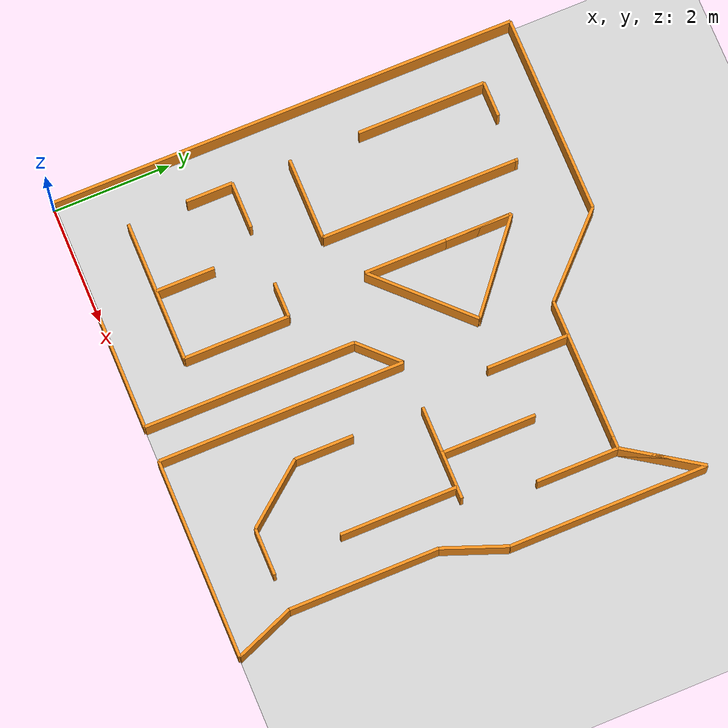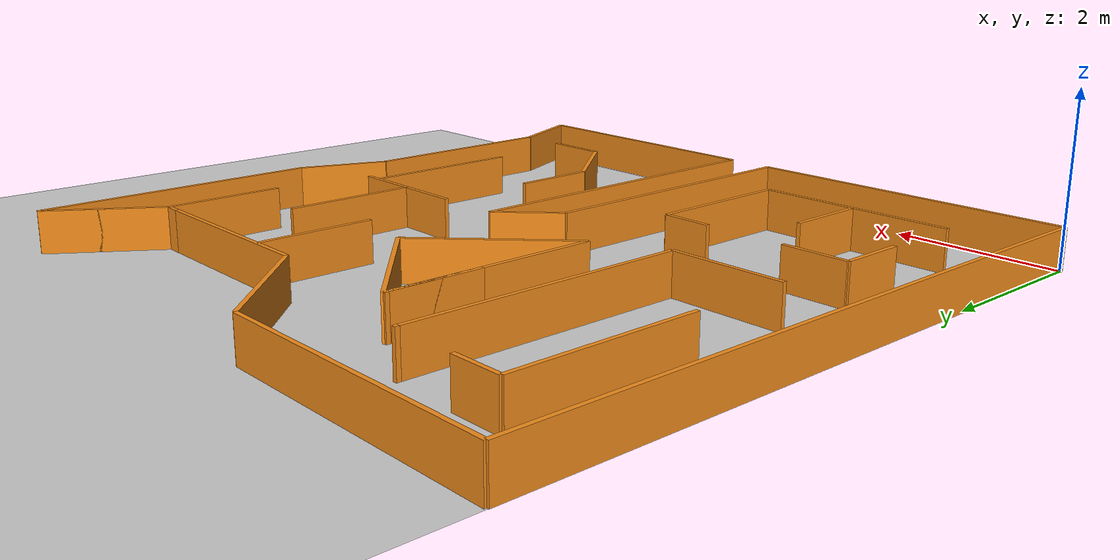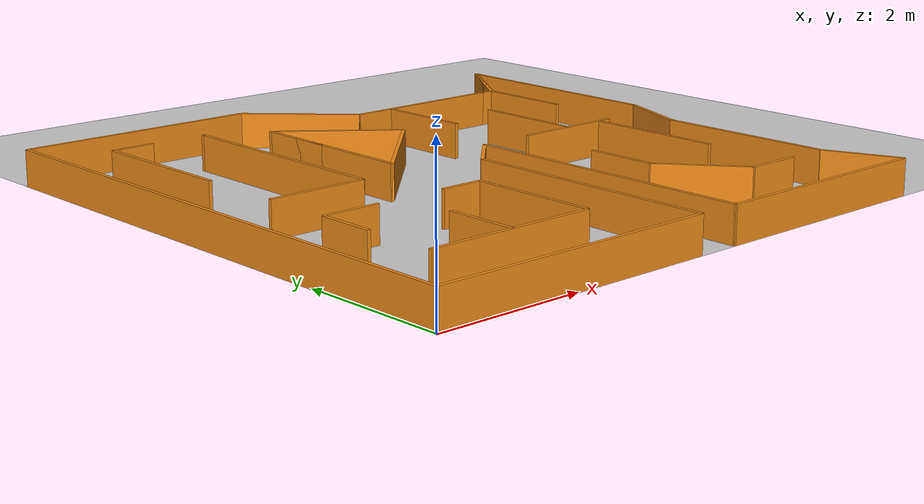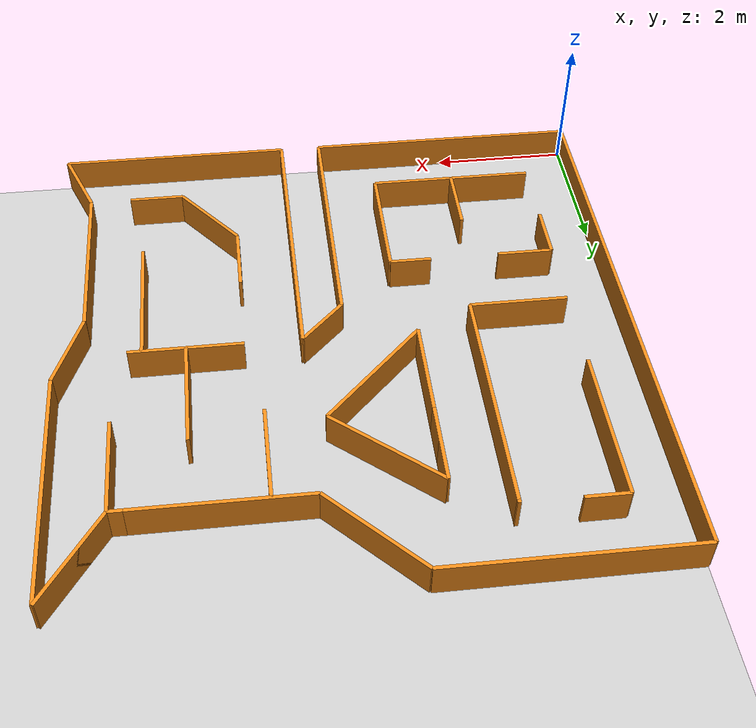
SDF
<sdf version="1.6">
 <world name="default">
  <model name="box_40">
   <pose>0.8 6.1 0.25 0 0 -1.5708</pose>
   <link name="link">
    <inertial>
     <mass>1</mass>
     <inertia><ixx>0</ixx><ixy>0</ixy><ixz>0</ixz><iyy>0</iyy><iyz>0</iyz><izz>0</izz></inertia>
    </inertial>
    <collision name="collision"><geometry><box><size>2.2 0.05 0.5</size></box></geometry></collision>
    <visual name="visual">
     <geometry><box><size>2.2 0.05 0.5</size></box></geometry>
     <material>
      <script><name>Gazebo/Orange</name><uri>file://media/materials/scripts/gazebo.material</uri></script>
     </material>
    </visual>
   </link>
   <static>1</static>
  </model>
  <model name="box_39">
   <pose>6.8 3.2 0.25 0 -0 1.5708</pose>
   <link name="link">
    <inertial>
     <mass>1</mass>
     <inertia><ixx>0</ixx><ixy>0</ixy><ixz>0</ixz><iyy>0</iyy><iyz>0</iyz><izz>0</izz></inertia>
    </inertial>
    <collision name="collision"><geometry><box><size>2 0.05 0.5</size></box></geometry></collision>
    <visual name="visual">
     <geometry><box><size>2 0.05 0.5</size></box></geometry>
     <material>
      <script><name>Gazebo/Orange</name><uri>file://media/materials/scripts/gazebo.material</uri></script>
     </material>
    </visual>
   </link>
   <static>1</static>
  </model>
  <model name="box_38">
   <pose>2 1.5 0.25 0 -0 1.5708</pose>
   <link name="link">
    <inertial>
     <mass>1</mass>
     <inertia><ixx>0</ixx><ixy>0</ixy><ixz>0</ixz><iyy>0</iyy><iyz>0</iyz><izz>0</izz></inertia>
    </inertial>
    <collision name="collision"><geometry><box><size>1 0.05 0.5</size></box></geometry></collision>
    <visual name="visual">
     <geometry><box><size>1 0.05 0.5</size></box></geometry>
     <material>
      <script><name>Gazebo/Orange</name><uri>file://media/materials/scripts/gazebo.material</uri></script>
     </material>
    </visual>
   </link>
   <static>1</static>
  </model>
  <model name="box_37">
   <pose>1.2 2.8 0.25 0 0 -3.14159</pose>
   <link name="link">
    <inertial>
     <mass>1</mass>
     <inertia><ixx>0</ixx><ixy>0</ixy><ixz>0</ixz><iyy>0</iyy><iyz>0</iyz><izz>0</izz></inertia>
    </inertial>
    <collision name="collision"><geometry><box><size>0.8 0.05 0.5</size></box></geometry></collision>
    <visual name="visual">
     <geometry><box><size>0.8 0.05 0.5</size></box></geometry>
     <material>
      <script><name>Gazebo/Orange</name><uri>file://media/materials/scripts/gazebo.material</uri></script>
     </material>
    </visual>
   </link>
   <static>1</static>
  </model>
  <model name="box_36">
   <pose>0.8 2.4 0.25 0 -0 1.5708</pose>
   <link name="link">
    <inertial>
     <mass>1</mass>
     <inertia><ixx>0</ixx><ixy>0</ixy><ixz>0</ixz><iyy>0</iyy><iyz>0</iyz><izz>0</izz></inertia>
    </inertial>
    <collision name="collision"><geometry><box><size>0.8 0.05 0.5</size></box></geometry></collision>
    <visual name="visual">
     <geometry><box><size>0.8 0.05 0.5</size></box></geometry>
     <material>
      <script><name>Gazebo/Orange</name><uri>file://media/materials/scripts/gazebo.material</uri></script>
     </material>
    </visual>
   </link>
   <static>1</static>
  </model>
  <model name="box_35">
   <pose>2 1 0.25 0 -0 0</pose>
   <link name="link">
    <inertial>
     <mass>1</mass>
     <inertia><ixx>0</ixx><ixy>0</ixy><ixz>0</ixz><iyy>0</iyy><iyz>0</iyz><izz>0</izz></inertia>
    </inertial>
    <collision name="collision"><geometry><box><size>2.4 0.05 0.5</size></box></geometry></collision>
    <visual name="visual">
     <geometry><box><size>2.4 0.05 0.5</size></box></geometry>
     <material>
      <script><name>Gazebo/Orange</name><uri>file://media/materials/scripts/gazebo.material</uri></script>
     </material>
    </visual>
   </link>
   <static>1</static>
  </model>
  <model name="box_34">
   <pose>3.2 1.9 0.25 0 0 -1.5708</pose>
   <link name="link">
    <inertial>
     <mass>1</mass>
     <inertia><ixx>0</ixx><ixy>0</ixy><ixz>0</ixz><iyy>0</iyy><iyz>0</iyz><izz>0</izz></inertia>
    </inertial>
    <collision name="collision"><geometry><box><size>1.8 0.05 0.5</size></box></geometry></collision>
    <visual name="visual">
     <geometry><box><size>1.8 0.05 0.5</size></box></geometry>
     <material>
      <script><name>Gazebo/Orange</name><uri>file://media/materials/scripts/gazebo.material</uri></script>
     </material>
    </visual>
   </link>
   <static>1</static>
  </model>
  <model name="box_33">
   <pose>2.9 2.8 0.25 0 0 -3.14159</pose>
   <link name="link">
    <inertial>
     <mass>1</mass>
     <inertia><ixx>0</ixx><ixy>0</ixy><ixz>0</ixz><iyy>0</iyy><iyz>0</iyz><izz>0</izz></inertia>
    </inertial>
    <collision name="collision"><geometry><box><size>0.6 0.05 0.5</size></box></geometry></collision>
    <visual name="visual">
     <geometry><box><size>0.6 0.05 0.5</size></box></geometry>
     <material>
      <script><name>Gazebo/Orange</name><uri>file://media/materials/scripts/gazebo.material</uri></script>
     </material>
    </visual>
   </link>
   <static>1</static>
  </model>
  <model name="box_32">
   <pose>1.5 3.8 0.25 0 0 -3.14159</pose>
   <link name="link">
    <inertial>
     <mass>1</mass>
     <inertia><ixx>0</ixx><ixy>0</ixy><ixz>0</ixz><iyy>0</iyy><iyz>0</iyz><izz>0</izz></inertia>
    </inertial>
    <collision name="collision"><geometry><box><size>1.4 0.05 0.5</size></box></geometry></collision>
    <visual name="visual">
     <geometry><box><size>1.4 0.05 0.5</size></box></geometry>
     <material>
      <script><name>Gazebo/Orange</name><uri>file://media/materials/scripts/gazebo.material</uri></script>
     </material>
    </visual>
   </link>
   <static>1</static>
  </model>
  <model name="box_31">
   <pose>1.1 7.2 0.25 0 0 -3.14159</pose>
   <link name="link">
    <inertial>
     <mass>1</mass>
     <inertia><ixx>0</ixx><ixy>0</ixy><ixz>0</ixz><iyy>0</iyy><iyz>0</iyz><izz>0</izz></inertia>
    </inertial>
    <collision name="collision"><geometry><box><size>0.6 0.05 0.5</size></box></geometry></collision>
    <visual name="visual">
     <geometry><box><size>0.6 0.05 0.5</size></box></geometry>
     <material>
      <script><name>Gazebo/Orange</name><uri>file://media/materials/scripts/gazebo.material</uri></script>
     </material>
    </visual>
   </link>
   <static>1</static>
  </model>
  <model name="box_30">
   <pose>2 0 0.25 0 -0 0</pose>
   <link name="link">
    <inertial>
     <mass>1</mass>
     <inertia><ixx>0</ixx><ixy>0</ixy><ixz>0</ixz><iyy>0</iyy><iyz>0</iyz><izz>0</izz></inertia>
    </inertial>
    <collision name="collision"><geometry><box><size>4 0.05 0.5</size></box></geometry></collision>
    <visual name="visual">
     <geometry><box><size>4 0.05 0.5</size></box></geometry>
     <material>
      <script><name>Gazebo/Orange</name><uri>file://media/materials/scripts/gazebo.material</uri></script>
     </material>
    </visual>
   </link>
   <static>1</static>
  </model>
  <model name="box_29">
   <pose>6.3 0 0.25 0 0 -3.14159</pose>
   <link name="link">
    <inertial>
     <mass>1</mass>
     <inertia><ixx>0</ixx><ixy>0</ixy><ixz>0</ixz><iyy>0</iyy><iyz>0</iyz><izz>0</izz></inertia>
    </inertial>
    <collision name="collision"><geometry><box><size>3.4 0.05 0.5</size></box></geometry></collision>
    <visual name="visual">
     <geometry><box><size>3.4 0.05 0.5</size></box></geometry>
     <material>
      <script><name>Gazebo/Orange</name><uri>file://media/materials/scripts/gazebo.material</uri></script>
     </material>
    </visual>
   </link>
   <static>1</static>
  </model>
  <model name="box_28">
   <pose>1.7 8 0.25 0 0 -3.14159</pose>
   <link name="link">
    <inertial>
     <mass>1</mass>
     <inertia><ixx>0</ixx><ixy>0</ixy><ixz>0</ixz><iyy>0</iyy><iyz>0</iyz><izz>0</izz></inertia>
    </inertial>
    <collision name="collision"><geometry><box><size>3.4 0.05 0.5</size></box></geometry></collision>
    <visual name="visual">
     <geometry><box><size>3.4 0.05 0.5</size></box></geometry>
     <material>
      <script><name>Gazebo/Orange</name><uri>file://media/materials/scripts/gazebo.material</uri></script>
     </material>
    </visual>
   </link>
   <static>1</static>
  </model>
  <model name="box_27">
   <pose>8 6.3 0.25 0 -0 1.5708</pose>
   <link name="link">
    <inertial>
     <mass>1</mass>
     <inertia><ixx>0</ixx><ixy>0</ixy><ixz>0</ixz><iyy>0</iyy><iyz>0</iyz><izz>0</izz></inertia>
    </inertial>
    <collision name="collision"><geometry><box><size>3.4 0.05 0.5</size></box></geometry></collision>
    <visual name="visual">
     <geometry><box><size>3.4 0.05 0.5</size></box></geometry>
     <material>
      <script><name>Gazebo/Orange</name><uri>file://media/materials/scripts/gazebo.material</uri></script>
     </material>
    </visual>
   </link>
   <static>1</static>
  </model>
  <model name="box_26">
   <pose>7.6 7.4 0.25 0 0 -2.1588</pose>
   <link name="link">
    <inertial>
     <mass>1</mass>
     <inertia><ixx>0</ixx><ixy>0</ixy><ixz>0</ixz><iyy>0</iyy><iyz>0</iyz><izz>0</izz></inertia>
    </inertial>
    <collision name="collision"><geometry><box><size>1.44222 0.05 0.5</size></box></geometry></collision>
    <visual name="visual">
     <geometry><box><size>1.44222 0.05 0.5</size></box></geometry>
     <material>
      <script><name>Gazebo/Orange</name><uri>file://media/materials/scripts/gazebo.material</uri></script>
     </material>
    </visual>
   </link>
   <static>1</static>
  </model>
  <model name="box_25">
   <pose>7.6 7.4 0.25 0 -0 0.982794</pose>
   <link name="link">
    <inertial>
     <mass>1</mass>
     <inertia><ixx>0</ixx><ixy>0</ixy><ixz>0</ixz><iyy>0</iyy><iyz>0</iyz><izz>0</izz></inertia>
    </inertial>
    <collision name="collision"><geometry><box><size>1.44222 0.05 0.5</size></box></geometry></collision>
    <visual name="visual">
     <geometry><box><size>1.44222 0.05 0.5</size></box></geometry>
     <material>
      <script><name>Gazebo/Orange</name><uri>file://media/materials/scripts/gazebo.material</uri></script>
     </material>
    </visual>
   </link>
   <static>1</static>
  </model>
  <model name="box_24">
   <pose>7.8 0.5 0.25 0 -0 1.9513</pose>
   <link name="link">
    <inertial>
     <mass>1</mass>
     <inertia><ixx>0</ixx><ixy>0</ixy><ixz>0</ixz><iyy>0</iyy><iyz>0</iyz><izz>0</izz></inertia>
    </inertial>
    <collision name="collision"><geometry><box><size>1.07703 0.05 0.5</size></box></geometry></collision>
    <visual name="visual">
     <geometry><box><size>1.07703 0.05 0.5</size></box></geometry>
     <material>
      <script><name>Gazebo/Orange</name><uri>file://media/materials/scripts/gazebo.material</uri></script>
     </material>
    </visual>
   </link>
   <static>1</static>
  </model>
  <model name="box_23">
   <pose>7.6 2.275 0.25 0 -0 1.5708</pose>
   <link name="link">
    <inertial>
     <mass>1</mass>
     <inertia><ixx>0</ixx><ixy>0</ixy><ixz>0</ixz><iyy>0</iyy><iyz>0</iyz><izz>0</izz></inertia>
    </inertial>
    <collision name="collision"><geometry><box><size>2.55 0.05 0.5</size></box></geometry></collision>
    <visual name="visual">
     <geometry><box><size>2.55 0.05 0.5</size></box></geometry>
     <material>
      <script><name>Gazebo/Orange</name><uri>file://media/materials/scripts/gazebo.material</uri></script>
     </material>
    </visual>
   </link>
   <static>1</static>
  </model>
  <model name="box_22">
   <pose>7.8 4.075 0.25 0 -0 1.20682</pose>
   <link name="link">
    <inertial>
     <mass>1</mass>
     <inertia><ixx>0</ixx><ixy>0</ixy><ixz>0</ixz><iyy>0</iyy><iyz>0</iyz><izz>0</izz></inertia>
    </inertial>
    <collision name="collision"><geometry><box><size>1.12361 0.05 0.5</size></box></geometry></collision>
    <visual name="visual">
     <geometry><box><size>1.12361 0.05 0.5</size></box></geometry>
     <material>
      <script><name>Gazebo/Orange</name><uri>file://media/materials/scripts/gazebo.material</uri></script>
     </material>
    </visual>
   </link>
   <static>1</static>
  </model>
  <model name="box_21">
   <pose>7.2 6.1 0.25 0 -0 1.5708</pose>
   <link name="link">
    <inertial>
     <mass>1</mass>
     <inertia><ixx>0</ixx><ixy>0</ixy><ixz>0</ixz><iyy>0</iyy><iyz>0</iyz><izz>0</izz></inertia>
    </inertial>
    <collision name="collision"><geometry><box><size>1.4 0.05 0.5</size></box></geometry></collision>
    <visual name="visual">
     <geometry><box><size>1.4 0.05 0.5</size></box></geometry>
     <material>
      <script><name>Gazebo/Orange</name><uri>file://media/materials/scripts/gazebo.material</uri></script>
     </material>
    </visual>
   </link>
   <static>1</static>
  </model>
  <model name="box_20">
   <pose>7.1 6.8 0.25 0 -0 0</pose>
   <link name="link">
    <inertial>
     <mass>1</mass>
     <inertia><ixx>0</ixx><ixy>0</ixy><ixz>0</ixz><iyy>0</iyy><iyz>0</iyz><izz>0</izz></inertia>
    </inertial>
    <collision name="collision"><geometry><box><size>0.2 0.05 0.5</size></box></geometry></collision>
    <visual name="visual">
     <geometry><box><size>0.2 0.05 0.5</size></box></geometry>
     <material>
      <script><name>Gazebo/Orange</name><uri>file://media/materials/scripts/gazebo.material</uri></script>
     </material>
    </visual>
   </link>
   <static>1</static>
  </model>
  <model name="box_19">
   <pose>5.2 6.1 0.25 0 -0 1.5708</pose>
   <link name="link">
    <inertial>
     <mass>1</mass>
     <inertia><ixx>0</ixx><ixy>0</ixy><ixz>0</ixz><iyy>0</iyy><iyz>0</iyz><izz>0</izz></inertia>
    </inertial>
    <collision name="collision"><geometry><box><size>1.4 0.05 0.5</size></box></geometry></collision>
    <visual name="visual">
     <geometry><box><size>1.4 0.05 0.5</size></box></geometry>
     <material>
      <script><name>Gazebo/Orange</name><uri>file://media/materials/scripts/gazebo.material</uri></script>
     </material>
    </visual>
   </link>
   <static>1</static>
  </model>
  <model name="box_18">
   <pose>6.2 5 0.25 0 -0 1.5708</pose>
   <link name="link">
    <inertial>
     <mass>1</mass>
     <inertia><ixx>0</ixx><ixy>0</ixy><ixz>0</ixz><iyy>0</iyy><iyz>0</iyz><izz>0</izz></inertia>
    </inertial>
    <collision name="collision"><geometry><box><size>1.6 0.05 0.5</size></box></geometry></collision>
    <visual name="visual">
     <geometry><box><size>1.6 0.05 0.5</size></box></geometry>
     <material>
      <script><name>Gazebo/Orange</name><uri>file://media/materials/scripts/gazebo.material</uri></script>
     </material>
    </visual>
   </link>
   <static>1</static>
  </model>
  <model name="box_17">
   <pose>5.8 6.8 0.25 0 0 -3.14159</pose>
   <link name="link">
    <inertial>
     <mass>1</mass>
     <inertia><ixx>0</ixx><ixy>0</ixy><ixz>0</ixz><iyy>0</iyy><iyz>0</iyz><izz>0</izz></inertia>
    </inertial>
    <collision name="collision"><geometry><box><size>2.4 0.05 0.5</size></box></geometry></collision>
    <visual name="visual">
     <geometry><box><size>2.4 0.05 0.5</size></box></geometry>
     <material>
      <script><name>Gazebo/Orange</name><uri>file://media/materials/scripts/gazebo.material</uri></script>
     </material>
    </visual>
   </link>
   <static>1</static>
  </model>
  <model name="box_16">
   <pose>4 7.4 0.25 0 0 -0.785398</pose>
   <link name="link">
    <inertial>
     <mass>1</mass>
     <inertia><ixx>0</ixx><ixy>0</ixy><ixz>0</ixz><iyy>0</iyy><iyz>0</iyz><izz>0</izz></inertia>
    </inertial>
    <collision name="collision"><geometry><box><size>1.69706 0.05 0.5</size></box></geometry></collision>
    <visual name="visual">
     <geometry><box><size>1.69706 0.05 0.5</size></box></geometry>
     <material>
      <script><name>Gazebo/Orange</name><uri>file://media/materials/scripts/gazebo.material</uri></script>
     </material>
    </visual>
   </link>
   <static>1</static>
  </model>
  <model name="box_15">
   <pose>6.6 1 0.25 0 0 -3.14159</pose>
   <link name="link">
    <inertial>
     <mass>1</mass>
     <inertia><ixx>0</ixx><ixy>0</ixy><ixz>0</ixz><iyy>0</iyy><iyz>0</iyz><izz>0</izz></inertia>
    </inertial>
    <collision name="collision"><geometry><box><size>0.8 0.05 0.5</size></box></geometry></collision>
    <visual name="visual">
     <geometry><box><size>0.8 0.05 0.5</size></box></geometry>
     <material>
      <script><name>Gazebo/Orange</name><uri>file://media/materials/scripts/gazebo.material</uri></script>
     </material>
    </visual>
   </link>
   <static>1</static>
  </model>
  <model name="box_14">
   <pose>5.8 1.5 0.25 0 -0 2.24554</pose>
   <link name="link">
    <inertial>
     <mass>1</mass>
     <inertia><ixx>0</ixx><ixy>0</ixy><ixz>0</ixz><iyy>0</iyy><iyz>0</iyz><izz>0</izz></inertia>
    </inertial>
    <collision name="collision"><geometry><box><size>1.28062 0.05 0.5</size></box></geometry></collision>
    <visual name="visual">
     <geometry><box><size>1.28062 0.05 0.5</size></box></geometry>
     <material>
      <script><name>Gazebo/Orange</name><uri>file://media/materials/scripts/gazebo.material</uri></script>
     </material>
    </visual>
   </link>
   <static>1</static>
  </model>
  <model name="box_13">
   <pose>5.4 2.5 0.25 0 -0 1.5708</pose>
   <link name="link">
    <inertial>
     <mass>1</mass>
     <inertia><ixx>0</ixx><ixy>0</ixy><ixz>0</ixz><iyy>0</iyy><iyz>0</iyz><izz>0</izz></inertia>
    </inertial>
    <collision name="collision"><geometry><box><size>1 0.05 0.5</size></box></geometry></collision>
    <visual name="visual">
     <geometry><box><size>1 0.05 0.5</size></box></geometry>
     <material>
      <script><name>Gazebo/Orange</name><uri>file://media/materials/scripts/gazebo.material</uri></script>
     </material>
    </visual>
   </link>
   <static>1</static>
  </model>
  <model name="box_12">
   <pose>6.2 4.2 0.25 0 0 -3.14159</pose>
   <link name="link">
    <inertial>
     <mass>1</mass>
     <inertia><ixx>0</ixx><ixy>0</ixy><ixz>0</ixz><iyy>0</iyy><iyz>0</iyz><izz>0</izz></inertia>
    </inertial>
    <collision name="collision"><geometry><box><size>1.6 0.05 0.5</size></box></geometry></collision>
    <visual name="visual">
     <geometry><box><size>1.6 0.05 0.5</size></box></geometry>
     <material>
      <script><name>Gazebo/Orange</name><uri>file://media/materials/scripts/gazebo.material</uri></script>
     </material>
    </visual>
   </link>
   <static>1</static>
  </model>
  <model name="box_11">
   <pose>4.6 2.1 0.25 0 -0 1.5708</pose>
   <link name="link">
    <inertial>
     <mass>1</mass>
     <inertia><ixx>0</ixx><ixy>0</ixy><ixz>0</ixz><iyy>0</iyy><iyz>0</iyz><izz>0</izz></inertia>
    </inertial>
    <collision name="collision"><geometry><box><size>4.2 0.05 0.5</size></box></geometry></collision>
    <visual name="visual">
     <geometry><box><size>4.2 0.05 0.5</size></box></geometry>
     <material>
      <script><name>Gazebo/Orange</name><uri>file://media/materials/scripts/gazebo.material</uri></script>
     </material>
    </visual>
   </link>
   <static>1</static>
  </model>
  <model name="box_10">
   <pose>4.3 3.9 0.25 0 0 -2.35619</pose>
   <link name="link">
    <inertial>
     <mass>1</mass>
     <inertia><ixx>0</ixx><ixy>0</ixy><ixz>0</ixz><iyy>0</iyy><iyz>0</iyz><izz>0</izz></inertia>
    </inertial>
    <collision name="collision"><geometry><box><size>0.848528 0.05 0.5</size></box></geometry></collision>
    <visual name="visual">
     <geometry><box><size>0.848528 0.05 0.5</size></box></geometry>
     <material>
      <script><name>Gazebo/Orange</name><uri>file://media/materials/scripts/gazebo.material</uri></script>
     </material>
    </visual>
   </link>
   <static>1</static>
  </model>
  <model name="box_9">
   <pose>4 1.8 0.25 0 0 -1.5708</pose>
   <link name="link">
    <inertial>
     <mass>1</mass>
     <inertia><ixx>0</ixx><ixy>0</ixy><ixz>0</ixz><iyy>0</iyy><iyz>0</iyz><izz>0</izz></inertia>
    </inertial>
    <collision name="collision"><geometry><box><size>3.6 0.05 0.5</size></box></geometry></collision>
    <visual name="visual">
     <geometry><box><size>3.6 0.05 0.5</size></box></geometry>
     <material>
      <script><name>Gazebo/Orange</name><uri>file://media/materials/scripts/gazebo.material</uri></script>
     </material>
    </visual>
   </link>
   <static>1</static>
  </model>
  <model name="box_8">
   <pose>3 6.175 0.25 0 0 -1.5708</pose>
   <link name="link">
    <inertial>
     <mass>1</mass>
     <inertia><ixx>0</ixx><ixy>0</ixy><ixz>0</ixz><iyy>0</iyy><iyz>0</iyz><izz>0</izz></inertia>
    </inertial>
    <collision name="collision"><geometry><box><size>1.15 0.05 0.5</size></box></geometry></collision>
    <visual name="visual">
     <geometry><box><size>1.15 0.05 0.5</size></box></geometry>
     <material>
      <script><name>Gazebo/Orange</name><uri>file://media/materials/scripts/gazebo.material</uri></script>
     </material>
    </visual>
   </link>
   <static>1</static>
  </model>
  <model name="box_7">
   <pose>3 6.15 0.25 0 -0 1.5708</pose>
   <link name="link">
    <inertial>
     <mass>1</mass>
     <inertia><ixx>0</ixx><ixy>0</ixy><ixz>0</ixz><iyy>0</iyy><iyz>0</iyz><izz>0</izz></inertia>
    </inertial>
    <collision name="collision"><geometry><box><size>1.1 0.05 0.5</size></box></geometry></collision>
    <visual name="visual">
     <geometry><box><size>1.1 0.05 0.5</size></box></geometry>
     <material>
      <script><name>Gazebo/Orange</name><uri>file://media/materials/scripts/gazebo.material</uri></script>
     </material>
    </visual>
   </link>
   <static>1</static>
  </model>
  <model name="box_6">
   <pose>3.7 6.175 0.25 0 -0 2.45392</pose>
   <link name="link">
    <inertial>
     <mass>1</mass>
     <inertia><ixx>0</ixx><ixy>0</ixy><ixz>0</ixz><iyy>0</iyy><iyz>0</iyz><izz>0</izz></inertia>
    </inertial>
    <collision name="collision"><geometry><box><size>1.81177 0.05 0.5</size></box></geometry></collision>
    <visual name="visual">
     <geometry><box><size>1.81177 0.05 0.5</size></box></geometry>
     <material>
      <script><name>Gazebo/Orange</name><uri>file://media/materials/scripts/gazebo.material</uri></script>
     </material>
    </visual>
   </link>
   <static>1</static>
  </model>
  <model name="box_5">
   <pose>3.7 4.9 0.25 0 0 -2.35619</pose>
   <link name="link">
    <inertial>
     <mass>1</mass>
     <inertia><ixx>0</ixx><ixy>0</ixy><ixz>0</ixz><iyy>0</iyy><iyz>0</iyz><izz>0</izz></inertia>
    </inertial>
    <collision name="collision"><geometry><box><size>1.9799 0.05 0.5</size></box></geometry></collision>
    <visual name="visual">
     <geometry><box><size>1.9799 0.05 0.5</size></box></geometry>
     <material>
      <script><name>Gazebo/Orange</name><uri>file://media/materials/scripts/gazebo.material</uri></script>
     </material>
    </visual>
   </link>
   <static>1</static>
  </model>
  <model name="box_4">
   <pose>3 4.9 0.25 0 -0 1.5708</pose>
   <link name="link">
    <inertial>
     <mass>1</mass>
     <inertia><ixx>0</ixx><ixy>0</ixy><ixz>0</ixz><iyy>0</iyy><iyz>0</iyz><izz>0</izz></inertia>
    </inertial>
    <collision name="collision"><geometry><box><size>1.4 0.05 0.5</size></box></geometry></collision>
    <visual name="visual">
     <geometry><box><size>1.4 0.05 0.5</size></box></geometry>
     <material>
      <script><name>Gazebo/Orange</name><uri>file://media/materials/scripts/gazebo.material</uri></script>
     </material>
    </visual>
   </link>
   <static>1</static>
  </model>
  <model name="box_3">
   <pose>0 4 0.25 0 -0 1.5708</pose>
   <link name="link">
    <inertial>
     <mass>1</mass>
     <inertia><ixx>0</ixx><ixy>0</ixy><ixz>0</ixz><iyy>0</iyy><iyz>0</iyz><izz>0</izz></inertia>
    </inertial>
    <collision name="collision"><geometry><box><size>8 0.05 0.5</size></box></geometry></collision>
    <visual name="visual">
     <geometry><box><size>8 0.05 0.5</size></box></geometry>
     <material>
      <script><name>Gazebo/Orange</name><uri>file://media/materials/scripts/gazebo.material</uri></script>
     </material>
    </visual>
   </link>
   <static>1</static>
  </model>
  <model name="box_2">
   <pose>2.2 7.175 0.25 0 -0 1.5708</pose>
   <link name="link">
    <inertial>
     <mass>1</mass>
     <inertia><ixx>0</ixx><ixy>0</ixy><ixz>0</ixz><iyy>0</iyy><iyz>0</iyz><izz>0</izz></inertia>
    </inertial>
    <collision name="collision"><geometry><box><size>0.05 0.05 0.5</size></box></geometry></collision>
    <visual name="visual">
     <geometry><box><size>0.05 0.05 0.5</size></box></geometry>
     <material>
      <script><name>Gazebo/Orange</name><uri>file://media/materials/scripts/gazebo.material</uri></script>
     </material>
    </visual>
   </link>
   <static>1</static>
  </model>
  <model name="box_1">
   <pose>2.2 5.475 0.25 0 -0 1.5708</pose>
   <link name="link">
    <inertial>
     <mass>1</mass>
     <inertia><ixx>0</ixx><ixy>0</ixy><ixz>0</ixz><iyy>0</iyy><iyz>0</iyz><izz>0</izz></inertia>
    </inertial>
    <collision name="collision"><geometry><box><size>3.35 0.05 0.5</size></box></geometry></collision>
    <visual name="visual">
     <geometry><box><size>3.35 0.05 0.5</size></box></geometry>
     <material>
      <script><name>Gazebo/Orange</name><uri>file://media/materials/scripts/gazebo.material</uri></script>
     </material>
    </visual>
   </link>
   <static>1</static>
  </model>
  <light name="user_point_light_0" type="point">
   <pose>0 0 5 0 -0 0</pose>
   <diffuse>0.5 0.5 0.5 1</diffuse>
   <specular>0.1 0.1 0.1 1</specular>
   <attenuation>
    <range>1000</range>
    <constant>0.05</constant>
    <linear>0.01</linear>
    <quadratic>0.001</quadratic>
   </attenuation>
   <cast_shadows>0</cast_shadows>
   <direction>0 0 -1</direction>
  </light>
  <model name="my_ground_plane">
   <static>1</static>
   <link name="link">
    <collision name="collision">
     <geometry><plane><normal>0 0 1</normal><size>100 100</size></plane></geometry>
     <surface><friction><ode><mu>100</mu><mu2>50</mu2></ode></friction></surface>
    </collision>
    <visual name="visual">
     <cast_shadows>0</cast_shadows>
     <geometry><plane><normal>0 0 1</normal><size>20 20</size></plane></geometry>
     <material>
      <script>
       <uri>model://my_ground_plane/materials/scripts</uri>
       <uri>model://my_ground_plane/materials/textures/</uri>
       <name>MyGroundPlane/Image</name>
      </script>
     </material>
    </visual>
   </link>
   <pose>10 10 0 0 -0 0</pose>
  </model>
  <gravity>0 0 -9.8</gravity>
  <magnetic_field>6e-06 2.3e-05 -4.2e-05</magnetic_field>
  <atmosphere type="adiabatic"/>
  <physics name="default_physics" default="0" type="ode">
   <max_step_size>0.001</max_step_size>
   <real_time_factor>1</real_time_factor>
   <real_time_update_rate>1000</real_time_update_rate>
  </physics>
  <scene><ambient>0.4 0.4 0.4 1</ambient><background>0.7 0.7 0.7 1</background><shadows>1</shadows></scene>
  <audio><device>default</device></audio>
  <spherical_coordinates>
   <surface_model>EARTH_WGS84</surface_model>
   <latitude_deg>0</latitude_deg>
   <longitude_deg>0</longitude_deg>
   <elevation>0</elevation>
   <heading_deg>0</heading_deg>
  </spherical_coordinates>
 </world>
</sdf>
